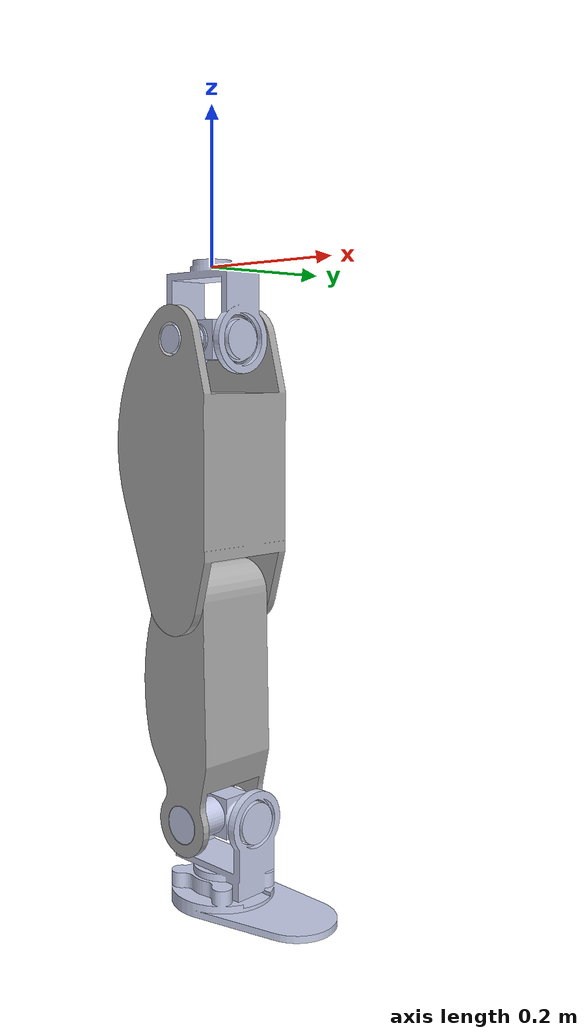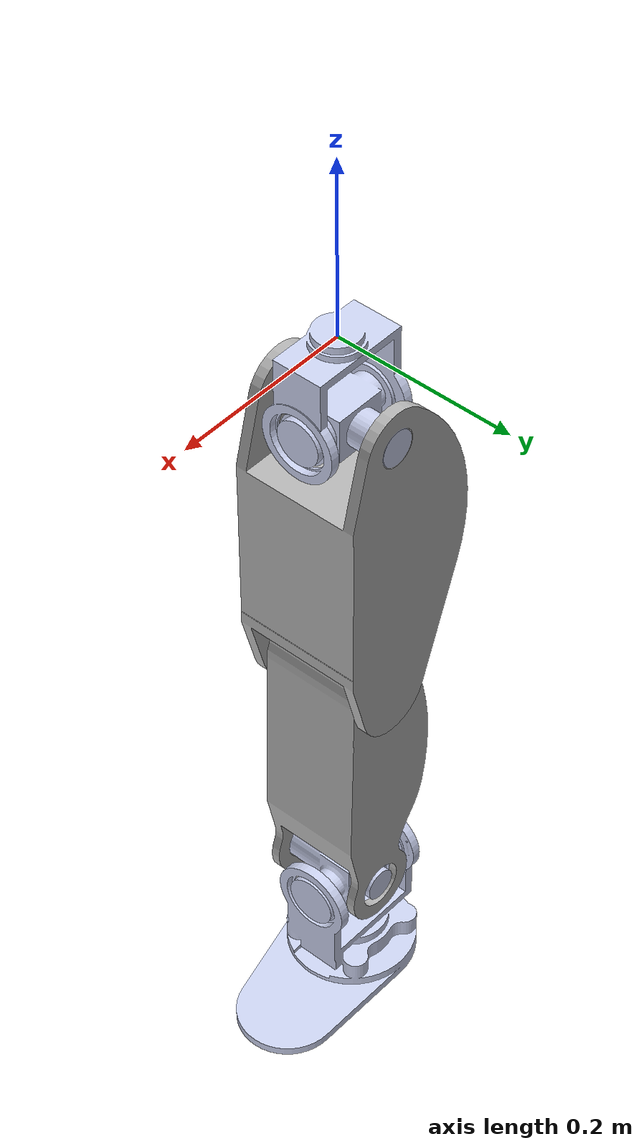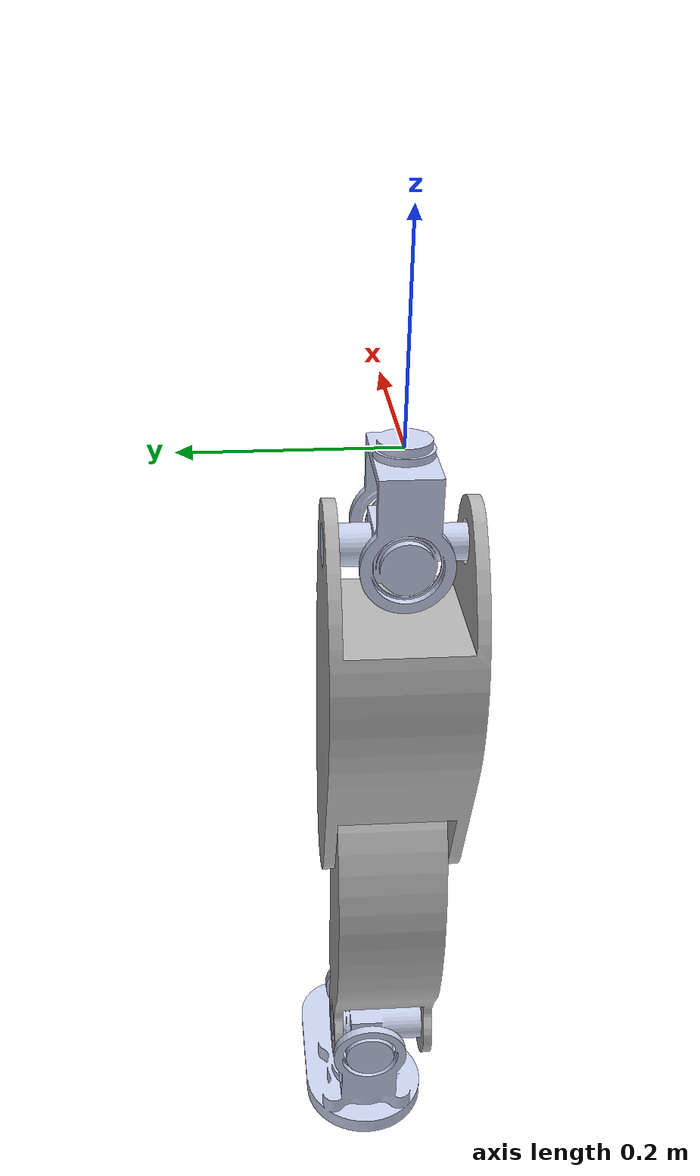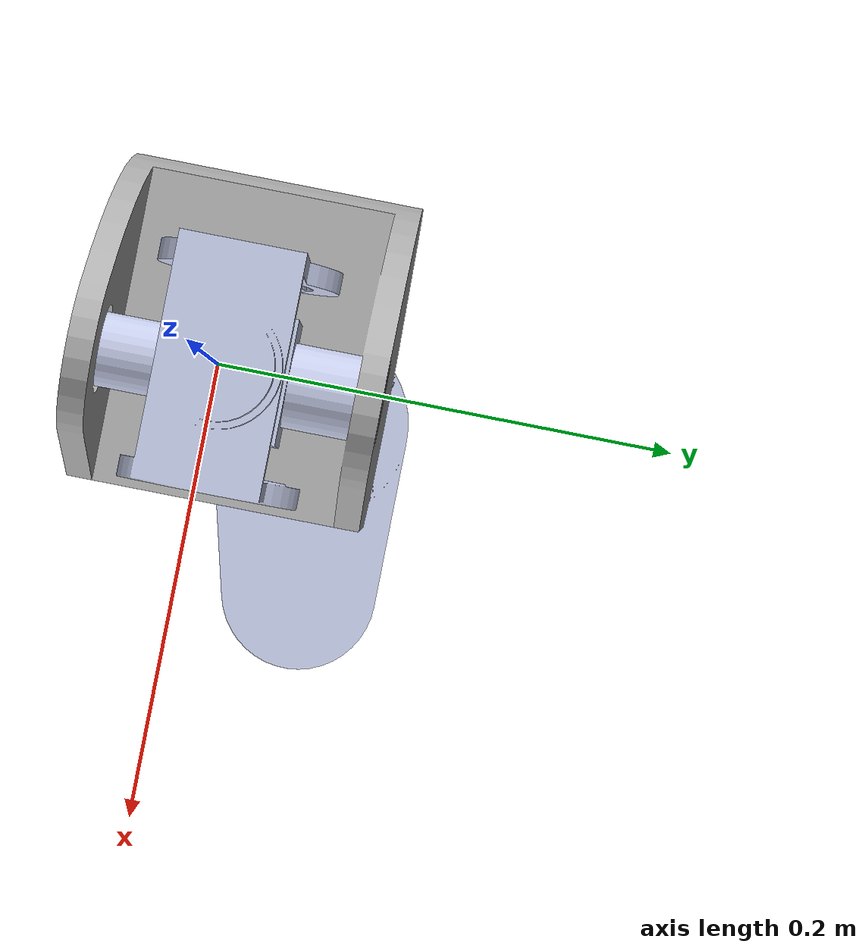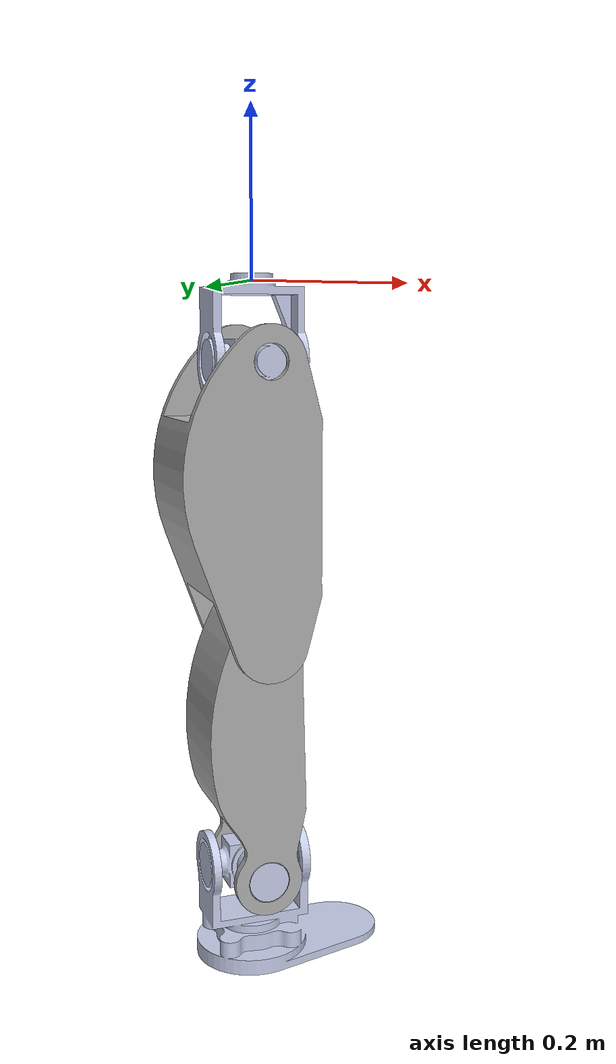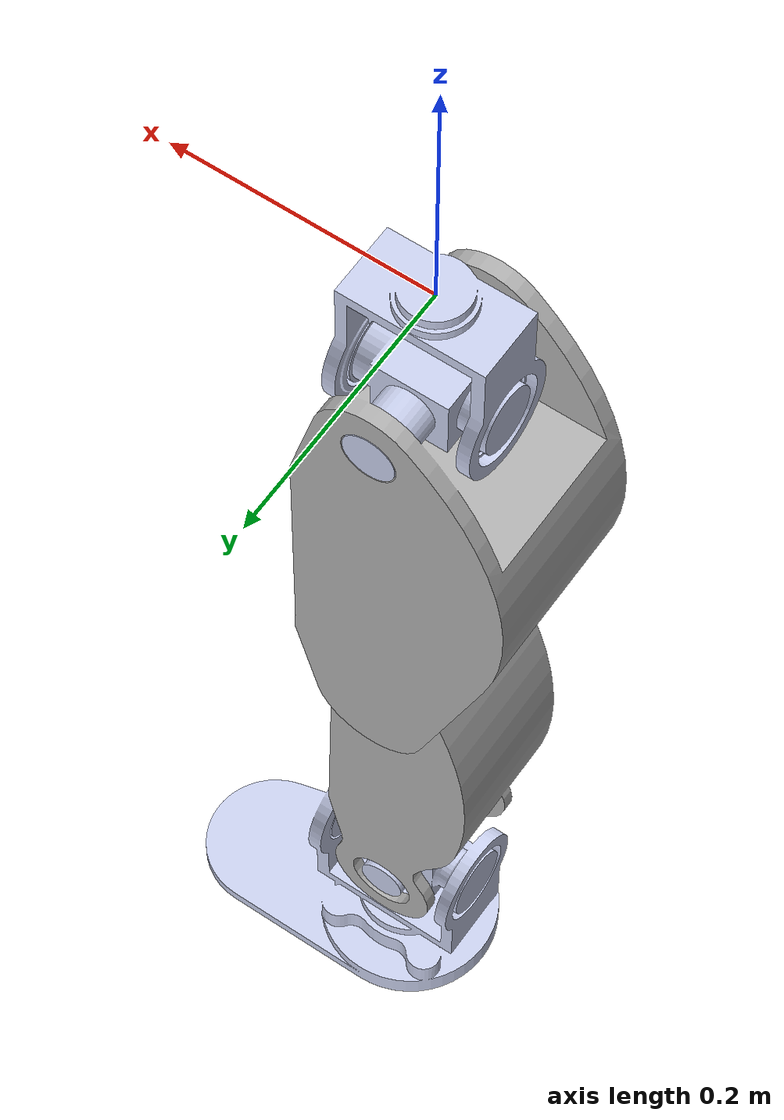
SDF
<?xml version='1.0'?>
<sdf version='1.7'>
  <model name='TEO_rightLeg'>

    <link name='AxialRightHip_link_adapter'/>

    <link name='AxialRightHip_link'>
      <pose>0 0 0 0 -0 0</pose>
      <inertial>
        <pose>0.000089 -0.000389 -0.065985 0 -0 0</pose>
        <mass>0.84945</mass>
        <inertia>
          <ixx>0.001564202</ixx>
          <ixy>0</ixy>
          <ixz>0.0000025</ixz>
          <iyy>0.002645089</iyy>
          <iyz>0</iyz>
          <izz>0.001706349</izz>
        </inertia>
      </inertial>
      <visual name='AxialRightHip_visual'>
        <geometry>
          <mesh>
            <uri>model://teo/meshes/visual/AxialRightHip.dae</uri>
          </mesh>
        </geometry>
        <material>
          <ambient>0.792157 0.819608 0.933333 1</ambient>
          <diffuse>0.792157 0.819608 0.933333 1</diffuse>
          <specular>0.633726 0.655686 0.746667 1</specular>
        </material>
      </visual>
      <collision name='AxialRightHip_collision'>
        <geometry>
          <mesh>
            <uri>model://teo/meshes/collision/AxialRightHip.stl</uri>
          </mesh>
        </geometry>
      </collision>
    </link>

    <joint name='AxialRightHip' type='revolute'>
      <parent>AxialRightHip_link_adapter</parent>
      <child>AxialRightHip_link</child>
      <axis>
        <xyz>0 0 1</xyz>
        <limit>
          <lower>-0.57</lower>
          <upper>0.49</upper>
        </limit>
        <dynamics>
          <damping>0.001</damping>
          <friction>0.7</friction>
        </dynamics>
      </axis>
    </joint>

    <link name='SagittalRightHip_link'>
      <pose>0 0 -0.092 0 -0 0</pose>
      <inertial>
        <pose>-0.000636 0.001058 0.000349 0 -0 0</pose>
        <mass>1.45459</mass>
        <inertia>
          <ixx>0.001545815</ixx>
          <ixy>-0.00000297</ixy>
          <ixz>-4.07e-09</ixz>
          <iyy>0.00119159</iyy>
          <iyz>9.16e-09</iyz>
          <izz>0.002270482</izz>
        </inertia>
      </inertial>
      <visual name='SagittalRightHip_visual'>
        <geometry>
          <mesh>
            <uri>model://teo/meshes/visual/SagittalRightHip.dae</uri>
          </mesh>
        </geometry>
        <material>
          <ambient>0.792157 0.819608 0.933333 1</ambient>
          <diffuse>0.792157 0.819608 0.933333 1</diffuse>
          <specular>0.633726 0.655686 0.746667 1</specular>
        </material>
      </visual>
      <collision name='SagittalRightHip_collision'>
        <geometry>
          <mesh>
            <uri>model://teo/meshes/collision/SagittalRightHip.stl</uri>
          </mesh>
        </geometry>
      </collision>
    </link>

    <joint name='SagittalRightHip' type='revolute'>
      <parent>AxialRightHip_link</parent>
      <child>SagittalRightHip_link</child>
      <axis>
        <xyz>1 0 0</xyz>
        <limit>
          <lower>-0.25</lower>
          <upper>0.22</upper>
        </limit>
        <dynamics>
          <damping>0.001</damping>
          <friction>0.7</friction>
        </dynamics>
      </axis>
    </joint>

    <link name='FrontalRightHip_link'>
      <pose>0 0 -0.092 0 -0 0</pose>
      <inertial>
        <pose>-0.010862 -0.000006 -0.161205 0 -0 0</pose>
        <mass>1.89152</mass>
        <inertia>
          <ixx>0.015077735</ixx>
          <ixy>0</ixy>
          <ixz>-0.000442074</ixz>
          <iyy>0.015112044</iyy>
          <iyz>0</iyz>
          <izz>0.00747346</izz>
        </inertia>
      </inertial>
      <visual name='FrontalRightHip_visual'>
        <geometry>
          <mesh>
            <uri>model://teo/meshes/visual/FrontalRightHip.dae</uri>
          </mesh>
        </geometry>
        <material>
          <ambient>1 1 1 1</ambient>
          <diffuse>0.7 0.7 0.7 1</diffuse>
          <specular>0.2 0.2 0.2 1</specular>
        </material>
      </visual>
      <collision name='FrontalRightHip_collision'>
        <geometry>
          <mesh>
            <uri>model://teo/meshes/collision/FrontalRightHip.stl</uri>
          </mesh>
        </geometry>
      </collision>
    </link>

    <joint name='FrontalRightHip' type='revolute'>
      <parent>SagittalRightHip_link</parent>
      <child>FrontalRightHip_link</child>
      <axis>
        <xyz>0 1 0</xyz>
        <limit>
          <lower>-0.55</lower>
          <upper>0.74</upper>
        </limit>
        <dynamics>
          <damping>0.001</damping>
          <friction>0.7</friction>
        </dynamics>
      </axis>
    </joint>

    <link name='FrontalRightKnee_link'>
      <pose>0 0 -0.422 0 -0 0</pose>
      <inertial>
        <pose>-0.006614 -0.000411 -0.146413 0 -0 0</pose>
        <mass>1.94824</mass>
        <inertia>
          <ixx>0.02186171</ixx>
          <ixy>0</ixy>
          <ixz>0.00000316</ixz>
          <iyy>0.021411109</iyy>
          <iyz>0</iyz>
          <izz>0.003843636</izz>
        </inertia>
      </inertial>
      <visual name='FrontalRightKnee_visual'>
        <geometry>
          <mesh>
            <uri>model://teo/meshes/visual/FrontalRightKnee.dae</uri>
          </mesh>
        </geometry>
        <material>
          <ambient>1 1 1 1</ambient>
          <diffuse>0.7 0.7 0.7 1</diffuse>
          <specular>0.2 0.2 0.2 1</specular>
        </material>
      </visual>
      <collision name='FrontalRightKnee_collision'>
        <geometry>
          <mesh>
            <uri>model://teo/meshes/collision/FrontalRightKnee.stl</uri>
          </mesh>
        </geometry>
      </collision>
    </link>

    <joint name='FrontalRightKnee' type='revolute'>
      <parent>FrontalRightHip_link</parent>
      <child>FrontalRightKnee_link</child>
      <axis>
        <xyz>0 1 0</xyz>
        <limit>
          <lower>-1.07</lower>
          <upper>1.44</upper>
        </limit>
        <dynamics>
          <damping>0.001</damping>
          <friction>0.7</friction>
        </dynamics>
      </axis>
    </joint>

    <link name='FrontalRightAnkle_link'>
      <pose>0 0.0175 -0.722 0 -0 0</pose>
      <inertial>
        <pose>0.002577 -0.013536 0.000182 0 -0 0</pose>
        <mass>1.50359</mass>
        <inertia>
          <ixx>0.001395488</ixx>
          <ixy>0.00000685</ixy>
          <ixz>1e-11</ixz>
          <iyy>0.001589358</iyy>
          <iyz>0</iyz>
          <izz>0.002418657</izz>
        </inertia>
      </inertial>
      <visual name='FrontalRightAnkle_visual'>
        <geometry>
          <mesh>
            <uri>model://teo/meshes/visual/FrontalRightAnkle.dae</uri>
          </mesh>
        </geometry>
        <material>
          <ambient>0.792157 0.819608 0.933333 1</ambient>
          <diffuse>0.792157 0.819608 0.933333 1</diffuse>
          <specular>0.633726 0.655686 0.746667 1</specular>
        </material>
      </visual>
      <collision name='FrontalRightAnkle_collision'>
        <geometry>
          <mesh>
            <uri>model://teo/meshes/collision/FrontalRightAnkle.stl</uri>
          </mesh>
        </geometry>
      </collision>
    </link>

    <joint name='FrontalRightAnkle' type='revolute'>
      <parent>FrontalRightKnee_link</parent>
      <child>FrontalRightAnkle_link</child>
      <axis>
        <xyz>0 1 0</xyz>
        <limit>
          <lower>-0.4</lower>
          <upper>0.44</upper>
        </limit>
        <dynamics>
          <damping>0.001</damping>
          <friction>0.7</friction>
        </dynamics>
      </axis>
    </joint>

    <link name='SagittalRightAnkle_link'>
      <pose>0 0.0175 -0.722 0 -0 0</pose>
      <inertial>
        <pose>0.01003 0.000936 -0.0669 0 -0 0</pose>
        <mass>2.1334</mass>
        <inertia>
          <ixx>0.00774203</ixx>
          <ixy>0.000455866</ixy>
          <ixz>-0.001851657</ixz>
          <iyy>0.014781323</iyy>
          <iyz>-0.000147513</iyz>
          <izz>0.013361748</izz>
        </inertia>
      </inertial>
      <visual name='FrontalRightAnkle_visual'>
        <geometry>
          <mesh>
            <uri>model://teo/meshes/visual/SagittalRightAnkle.dae</uri>
          </mesh>
        </geometry>
        <material>
          <ambient>0.792157 0.819608 0.933333 1</ambient>
          <diffuse>0.792157 0.819608 0.933333 1</diffuse>
          <specular>0.633726 0.655686 0.746667 1</specular>
        </material>
      </visual>
      <collision name='SagittalRightAnkle_collision'>
        <geometry>
          <mesh>
            <uri>model://teo/meshes/collision/SagittalRightAnkle.stl</uri>
          </mesh>
        </geometry>
      </collision>
    </link>

    <joint name='SagittalRightAnkle' type='revolute'>
      <parent>FrontalRightAnkle_link</parent>
      <child>SagittalRightAnkle_link</child>
      <axis>
        <xyz>1 0 0</xyz>
        <limit>
          <lower>-0.35</lower>
          <upper>0.74</upper>
        </limit>
        <dynamics>
          <damping>0.001</damping>
          <friction>0.7</friction>
        </dynamics>
      </axis>
    </joint>

    <link name='SagittalRightFoot_link'>
      <pose>0 0.0175 -0.722 0 -0 0</pose>
      <inertial>
        <pose>0.01003 0.000936 -0.0669 0 -0 0</pose>
        <mass>1.0</mass>
        <inertia>
          <ixx>0.00774203</ixx>
          <ixy>0.000455866</ixy>
          <ixz>-0.001851657</ixz>
          <iyy>0.014781323</iyy>
          <iyz>-0.000147513</iyz>
          <izz>0.013361748</izz>
        </inertia>
      </inertial>
      <visual name='FrontalRightFoot_visual'>
        <geometry>
          <mesh>
            <uri>model://teo/meshes/visual/SagittalRightFoot.dae</uri>
          </mesh>
        </geometry>
        <material>
          <ambient>0.792157 0.819608 0.933333 1</ambient>
          <diffuse>0.792157 0.819608 0.933333 1</diffuse>
          <specular>0.633726 0.655686 0.746667 1</specular>
        </material>
      </visual>
      <collision name='SagittalRightFoot_collision'>
        <geometry>
          <mesh>
            <uri>model://teo/meshes/collision/SagittalRightFoot.stl</uri>
          </mesh>
        </geometry>
        <max_contacts>4</max_contacts>
        <surface>
          <contact>
            <ode>
              <kp>18000000</kp>
              <kd>100</kd>
              <max_vel>100</max_vel>
              <min_depth>0.0001</min_depth>
            </ode>
          </contact>
          <friction>
            <ode/>
          </friction>
        </surface>
      </collision>
    </link>

    <joint name='SagittalRightFoot' type='fixed'>
      <parent>SagittalRightAnkle_link</parent>
      <child>SagittalRightFoot_link</child>
      <pose>0 0 -0.113 3.141593 0 0</pose>
      <sensor name="rightLeg_ft" type="force_torque">
        <always_on>true</always_on>
        <update_rate>200</update_rate>
        <force_torque>
          <frame>sensor</frame>
          <measure_direction>child_to_parent</measure_direction>
        </force_torque>
        <plugin name='rightLeg_ft_plugin' filename='libgazebo_yarp_forcetorque.so'>
          <yarpConfigurationFile>model://teo/conf/gazebo_teo_rightLeg_ft.ini</yarpConfigurationFile>
        </plugin>
      </sensor>
    </joint>

    <plugin name='controlboard_rightLeg' filename='libgazebo_yarp_controlboard.so'>
      <yarpConfigurationFile>model://teo/conf/gazebo_teo_rightLeg.ini</yarpConfigurationFile>
    </plugin>

    <plugin name='gzyarp::ControlBoard' filename='gz-sim-yarp-controlboard-system'>
      <yarpConfigurationFile>model://teo/conf/gazebo_teo_rightLeg.ini</yarpConfigurationFile>
    </plugin>

    <plugin name='gzyarp::ForceTorque' filename='gz-sim-yarp-forcetorque-system'>
      <yarpConfigurationFile>model://teo/conf/gazebo_teo_rightLeg_ft.ini</yarpConfigurationFile>
    </plugin>

  </model>
</sdf>
